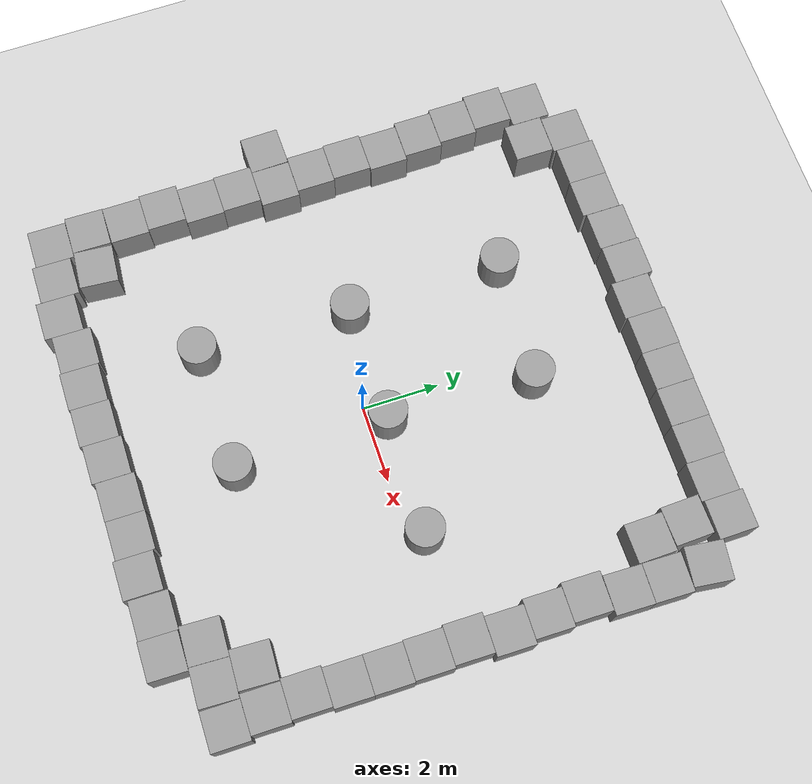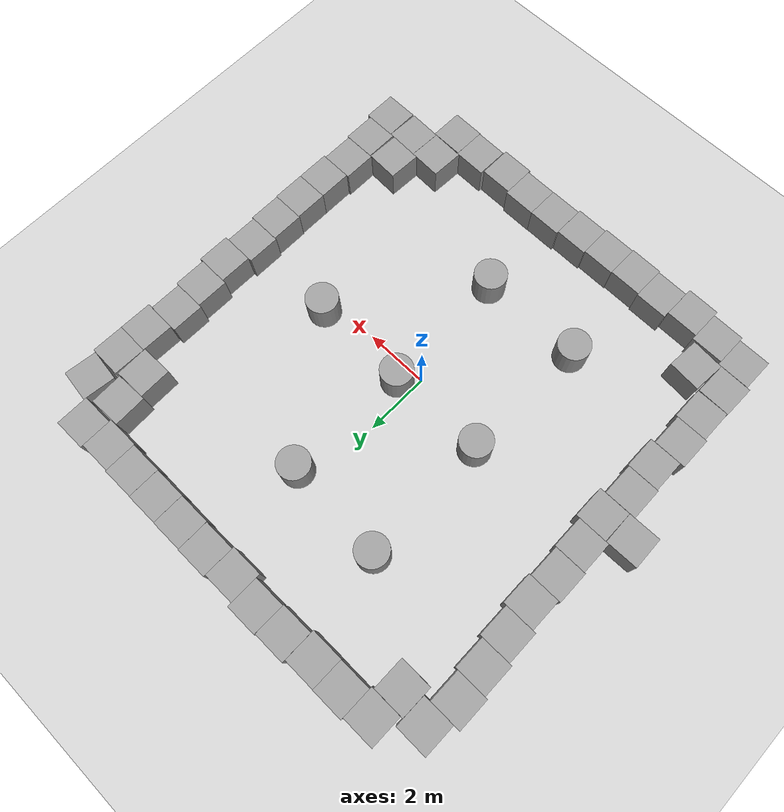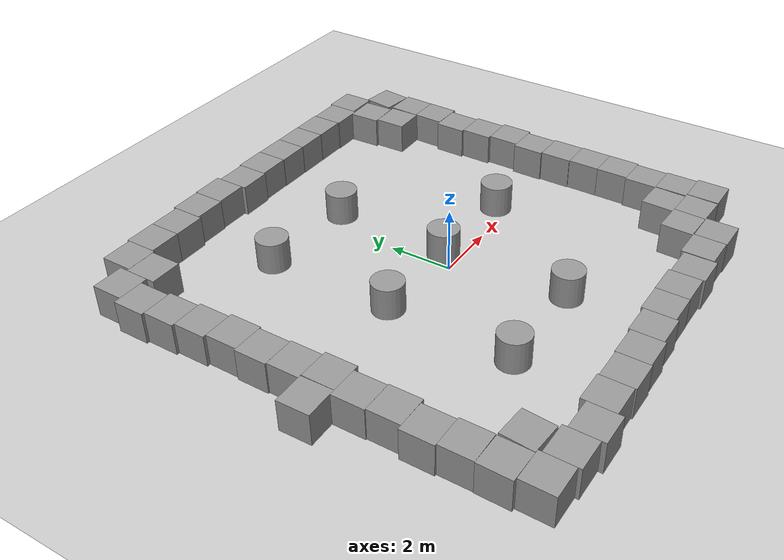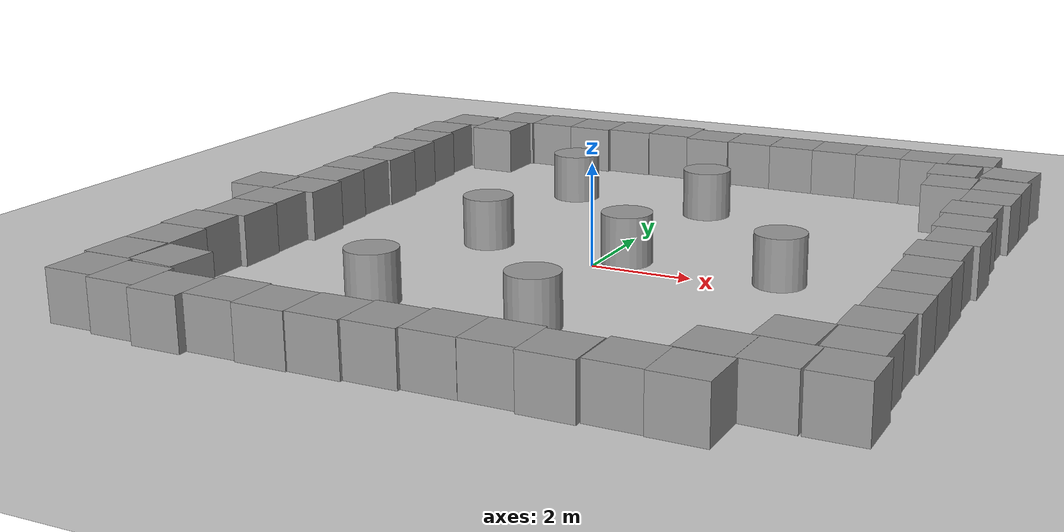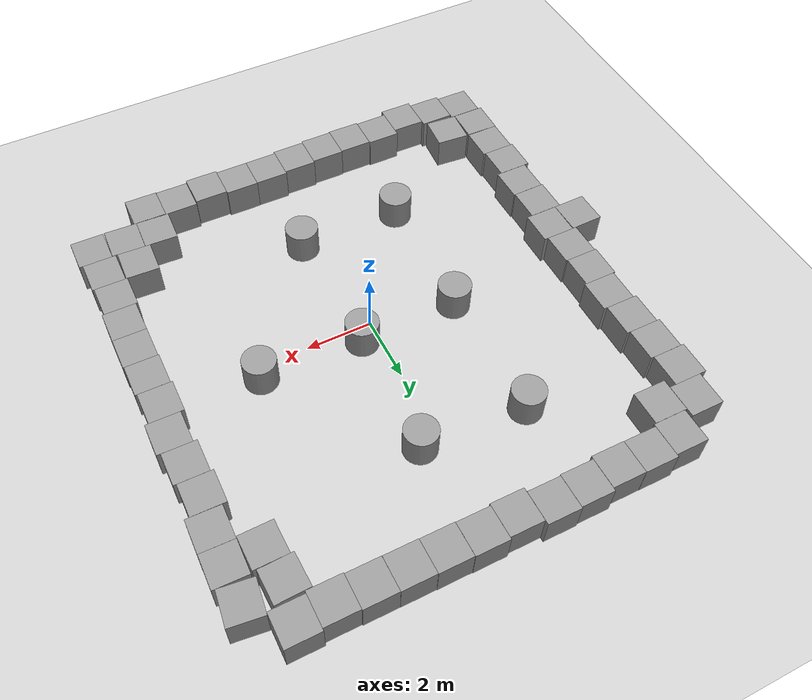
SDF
<sdf version="1.7">
 <world name="default">
  <light name="sun" type="directional">
   <pose>0 0 10 0 -0 0</pose>
   <diffuse>0.8 0.8 0.8 1</diffuse>
   <specular>0.2 0.2 0.2 1</specular>
   <attenuation>
    <range>1000</range>
    <constant>0.9</constant>
    <linear>0.01</linear>
    <quadratic>0.001</quadratic>
   </attenuation>
   <direction>-0.5 0.1 -0.9</direction>
   <spot><inner_angle>0</inner_angle><outer_angle>0</outer_angle><falloff>0</falloff></spot>
  </light>
  <model name="ground_plane">
   <static>1</static>
   <link name="link">
    <collision name="collision">
     <geometry><plane><normal>0 0 1</normal><size>100 100</size></plane></geometry>
     <surface>
      <contact><collide_bitmask>65535</collide_bitmask></contact>
      <friction><ode><mu>100</mu><mu2>50</mu2></ode></friction>
     </surface>
    </collision>
    <visual name="visual">
     <cast_shadows>0</cast_shadows>
     <geometry><plane><normal>0 0 1</normal><size>100 100</size></plane></geometry>
     <material>
      <script><uri>file://media/materials/scripts/gazebo.material</uri><name>Gazebo/Grey</name></script>
     </material>
    </visual>
   </link>
  </model>
  <gravity>0 0 -9.8</gravity>
  <magnetic_field>6e-06 2.3e-05 -4.2e-05</magnetic_field>
  <atmosphere type="adiabatic"/>
  <physics type="ode">
   <max_step_size>0.001</max_step_size>
   <real_time_factor>1</real_time_factor>
   <real_time_update_rate>1000</real_time_update_rate>
  </physics>
  <scene><ambient>0.4 0.4 0.4 1</ambient><background>0.7 0.7 0.7 1</background><shadows>1</shadows></scene>
  <spherical_coordinates>
   <surface_model>EARTH_WGS84</surface_model>
   <latitude_deg>0</latitude_deg>
   <longitude_deg>0</longitude_deg>
   <elevation>0</elevation>
   <heading_deg>0</heading_deg>
  </spherical_coordinates>
  <model name="unit_box">
   <pose>-5.49885 -5.40816 0.499995 1e-05 -0 -0.084874</pose>
   <link name="link">
    <inertial>
     <mass>1</mass>
     <inertia>
      <ixx>0.166667</ixx>
      <ixy>0</ixy>
      <ixz>0</ixz>
      <iyy>0.166667</iyy>
      <iyz>0</iyz>
      <izz>0.166667</izz>
     </inertia>
    </inertial>
    <collision name="collision"><geometry><box><size>1 1 1</size></box></geometry></collision>
    <visual name="visual">
     <geometry><box><size>1 1 1</size></box></geometry>
     <material>
      <script><name>Gazebo/Grey</name><uri>file://media/materials/scripts/gazebo.material</uri></script>
     </material>
    </visual>
   </link>
  </model>
  <model name="unit_box_clone">
   <pose>-4.44568 -6.63385 0.499995 0 1e-05 -0.011307</pose>
   <link name="link">
    <inertial>
     <mass>1</mass>
     <inertia>
      <ixx>0.166667</ixx>
      <ixy>0</ixy>
      <ixz>0</ixz>
      <iyy>0.166667</iyy>
      <iyz>0</iyz>
      <izz>0.166667</izz>
     </inertia>
    </inertial>
    <collision name="collision"><geometry><box><size>1 1 1</size></box></geometry></collision>
    <visual name="visual">
     <geometry><box><size>1 1 1</size></box></geometry>
     <material>
      <script><name>Gazebo/Grey</name><uri>file://media/materials/scripts/gazebo.material</uri></script>
     </material>
    </visual>
   </link>
  </model>
  <model name="unit_box_clone_0">
   <pose>-3.44363 -6.4717 0.499995 1e-05 -0 -0.010857</pose>
   <link name="link">
    <inertial>
     <mass>1</mass>
     <inertia>
      <ixx>0.166667</ixx>
      <ixy>0</ixy>
      <ixz>0</ixz>
      <iyy>0.166667</iyy>
      <iyz>0</iyz>
      <izz>0.166667</izz>
     </inertia>
    </inertial>
    <collision name="collision"><geometry><box><size>1 1 1</size></box></geometry></collision>
    <visual name="visual">
     <geometry><box><size>1 1 1</size></box></geometry>
     <material>
      <script><name>Gazebo/Grey</name><uri>file://media/materials/scripts/gazebo.material</uri></script>
     </material>
    </visual>
   </link>
  </model>
  <model name="unit_box_clone_1">
   <pose>-2.44409 -6.52458 0.499995 1e-05 -0 -0.010769</pose>
   <link name="link">
    <inertial>
     <mass>1</mass>
     <inertia>
      <ixx>0.166667</ixx>
      <ixy>0</ixy>
      <ixz>0</ixz>
      <iyy>0.166667</iyy>
      <iyz>0</iyz>
      <izz>0.166667</izz>
     </inertia>
    </inertial>
    <collision name="collision"><geometry><box><size>1 1 1</size></box></geometry></collision>
    <visual name="visual">
     <geometry><box><size>1 1 1</size></box></geometry>
     <material>
      <script><name>Gazebo/Grey</name><uri>file://media/materials/scripts/gazebo.material</uri></script>
     </material>
    </visual>
   </link>
  </model>
  <model name="unit_box_clone_2">
   <pose>-1.44379 -6.50556 0.499995 -0 -1e-05 -0.010718</pose>
   <link name="link">
    <inertial>
     <mass>1</mass>
     <inertia>
      <ixx>0.166667</ixx>
      <ixy>0</ixy>
      <ixz>0</ixz>
      <iyy>0.166667</iyy>
      <iyz>0</iyz>
      <izz>0.166667</izz>
     </inertia>
    </inertial>
    <collision name="collision"><geometry><box><size>1 1 1</size></box></geometry></collision>
    <visual name="visual">
     <geometry><box><size>1 1 1</size></box></geometry>
     <material>
      <script><name>Gazebo/Grey</name><uri>file://media/materials/scripts/gazebo.material</uri></script>
     </material>
    </visual>
   </link>
  </model>
  <model name="unit_box_clone_3">
   <pose>-0.443128 -6.45912 0.499995 -1e-05 -0 -0.010554</pose>
   <link name="link">
    <inertial>
     <mass>1</mass>
     <inertia>
      <ixx>0.166667</ixx>
      <ixy>0</ixy>
      <ixz>0</ixz>
      <iyy>0.166667</iyy>
      <iyz>0</iyz>
      <izz>0.166667</izz>
     </inertia>
    </inertial>
    <collision name="collision"><geometry><box><size>1 1 1</size></box></geometry></collision>
    <visual name="visual">
     <geometry><box><size>1 1 1</size></box></geometry>
     <material>
      <script><name>Gazebo/Grey</name><uri>file://media/materials/scripts/gazebo.material</uri></script>
     </material>
    </visual>
   </link>
  </model>
  <model name="unit_box_clone_4">
   <pose>0.557963 -6.39941 0.499995 -1e-05 -0 -0.009621</pose>
   <link name="link">
    <inertial>
     <mass>1</mass>
     <inertia>
      <ixx>0.166667</ixx>
      <ixy>0</ixy>
      <ixz>0</ixz>
      <iyy>0.166667</iyy>
      <iyz>0</iyz>
      <izz>0.166667</izz>
     </inertia>
    </inertial>
    <collision name="collision"><geometry><box><size>1 1 1</size></box></geometry></collision>
    <visual name="visual">
     <geometry><box><size>1 1 1</size></box></geometry>
     <material>
      <script><name>Gazebo/Grey</name><uri>file://media/materials/scripts/gazebo.material</uri></script>
     </material>
    </visual>
   </link>
  </model>
  <model name="unit_box_clone_5">
   <pose>1.55799 -6.40229 0.499995 1e-05 0 -0.009621</pose>
   <link name="link">
    <inertial>
     <mass>1</mass>
     <inertia>
      <ixx>0.166667</ixx>
      <ixy>0</ixy>
      <ixz>0</ixz>
      <iyy>0.166667</iyy>
      <iyz>0</iyz>
      <izz>0.166667</izz>
     </inertia>
    </inertial>
    <collision name="collision"><geometry><box><size>1 1 1</size></box></geometry></collision>
    <visual name="visual">
     <geometry><box><size>1 1 1</size></box></geometry>
     <material>
      <script><name>Gazebo/Grey</name><uri>file://media/materials/scripts/gazebo.material</uri></script>
     </material>
    </visual>
   </link>
  </model>
  <model name="unit_box_clone_6">
   <pose>5.44243 -4.45882 0.499995 1e-05 0 -0.047217</pose>
   <link name="link">
    <inertial>
     <mass>1</mass>
     <inertia>
      <ixx>0.166667</ixx>
      <ixy>0</ixy>
      <ixz>0</ixz>
      <iyy>0.166667</iyy>
      <iyz>0</iyz>
      <izz>0.166667</izz>
     </inertia>
    </inertial>
    <collision name="collision"><geometry><box><size>1 1 1</size></box></geometry></collision>
    <visual name="visual">
     <geometry><box><size>1 1 1</size></box></geometry>
     <material>
      <script><name>Gazebo/Grey</name><uri>file://media/materials/scripts/gazebo.material</uri></script>
     </material>
    </visual>
   </link>
  </model>
  <model name="unit_box_clone_7">
   <pose>6.43536 -3.48599 0.5 -1e-06 -0 -0.009317</pose>
   <link name="link">
    <inertial>
     <mass>1</mass>
     <inertia>
      <ixx>0.166667</ixx>
      <ixy>0</ixy>
      <ixz>0</ixz>
      <iyy>0.166667</iyy>
      <iyz>0</iyz>
      <izz>0.166667</izz>
     </inertia>
    </inertial>
    <collision name="collision"><geometry><box><size>1 1 1</size></box></geometry></collision>
    <visual name="visual">
     <geometry><box><size>1 1 1</size></box></geometry>
     <material>
      <script><name>Gazebo/Grey</name><uri>file://media/materials/scripts/gazebo.material</uri></script>
     </material>
    </visual>
   </link>
  </model>
  <model name="unit_box_clone_8">
   <pose>6.50513 -2.48659 0.5 0 -0 -0.009328</pose>
   <link name="link">
    <inertial>
     <mass>1</mass>
     <inertia>
      <ixx>0.166667</ixx>
      <ixy>0</ixy>
      <ixz>0</ixz>
      <iyy>0.166667</iyy>
      <iyz>0</iyz>
      <izz>0.166667</izz>
     </inertia>
    </inertial>
    <collision name="collision"><geometry><box><size>1 1 1</size></box></geometry></collision>
    <visual name="visual">
     <geometry><box><size>1 1 1</size></box></geometry>
     <material>
      <script><name>Gazebo/Grey</name><uri>file://media/materials/scripts/gazebo.material</uri></script>
     </material>
    </visual>
   </link>
  </model>
  <model name="unit_box_clone_9">
   <pose>6.57158 -5.48756 0.499995 0 1e-05 -0.009032</pose>
   <link name="link">
    <inertial>
     <mass>1</mass>
     <inertia>
      <ixx>0.166667</ixx>
      <ixy>0</ixy>
      <ixz>0</ixz>
      <iyy>0.166667</iyy>
      <iyz>0</iyz>
      <izz>0.166667</izz>
     </inertia>
    </inertial>
    <collision name="collision"><geometry><box><size>1 1 1</size></box></geometry></collision>
    <visual name="visual">
     <geometry><box><size>1 1 1</size></box></geometry>
     <material>
      <script><name>Gazebo/Grey</name><uri>file://media/materials/scripts/gazebo.material</uri></script>
     </material>
    </visual>
   </link>
  </model>
  <model name="unit_box_clone_10">
   <pose>6.47735 -4.48659 0.499995 0 1e-05 -0.00917</pose>
   <link name="link">
    <inertial>
     <mass>1</mass>
     <inertia>
      <ixx>0.166667</ixx>
      <ixy>0</ixy>
      <ixz>0</ixz>
      <iyy>0.166667</iyy>
      <iyz>0</iyz>
      <izz>0.166667</izz>
     </inertia>
    </inertial>
    <collision name="collision"><geometry><box><size>1 1 1</size></box></geometry></collision>
    <visual name="visual">
     <geometry><box><size>1 1 1</size></box></geometry>
     <material>
      <script><name>Gazebo/Grey</name><uri>file://media/materials/scripts/gazebo.material</uri></script>
     </material>
    </visual>
   </link>
  </model>
  <model name="unit_box_clone_11">
   <pose>5.54749 -5.46491 0.499995 1e-05 -0 -0.047201</pose>
   <link name="link">
    <inertial>
     <mass>1</mass>
     <inertia>
      <ixx>0.166667</ixx>
      <ixy>0</ixy>
      <ixz>0</ixz>
      <iyy>0.166667</iyy>
      <iyz>0</iyz>
      <izz>0.166667</izz>
     </inertia>
    </inertial>
    <collision name="collision"><geometry><box><size>1 1 1</size></box></geometry></collision>
    <visual name="visual">
     <geometry><box><size>1 1 1</size></box></geometry>
     <material>
      <script><name>Gazebo/Grey</name><uri>file://media/materials/scripts/gazebo.material</uri></script>
     </material>
    </visual>
   </link>
  </model>
  <model name="unit_box_clone_12">
   <pose>4.54623 -5.41848 0.499995 -1e-05 -0 -0.045584</pose>
   <link name="link">
    <inertial>
     <mass>1</mass>
     <inertia>
      <ixx>0.166667</ixx>
      <ixy>0</ixy>
      <ixz>0</ixz>
      <iyy>0.166667</iyy>
      <iyz>0</iyz>
      <izz>0.166667</izz>
     </inertia>
    </inertial>
    <collision name="collision"><geometry><box><size>1 1 1</size></box></geometry></collision>
    <visual name="visual">
     <geometry><box><size>1 1 1</size></box></geometry>
     <material>
      <script><name>Gazebo/Grey</name><uri>file://media/materials/scripts/gazebo.material</uri></script>
     </material>
    </visual>
   </link>
  </model>
  <model name="unit_box_clone_13">
   <pose>4.58052 -6.43426 0.499995 0 1e-05 -0.019018</pose>
   <link name="link">
    <inertial>
     <mass>1</mass>
     <inertia>
      <ixx>0.166667</ixx>
      <ixy>0</ixy>
      <ixz>0</ixz>
      <iyy>0.166667</iyy>
      <iyz>0</iyz>
      <izz>0.166667</izz>
     </inertia>
    </inertial>
    <collision name="collision"><geometry><box><size>1 1 1</size></box></geometry></collision>
    <visual name="visual">
     <geometry><box><size>1 1 1</size></box></geometry>
     <material>
      <script><name>Gazebo/Grey</name><uri>file://media/materials/scripts/gazebo.material</uri></script>
     </material>
    </visual>
   </link>
  </model>
  <model name="unit_box_clone_14">
   <pose>3.5809 -6.39336 0.499995 0 1e-05 -0.01867</pose>
   <link name="link">
    <inertial>
     <mass>1</mass>
     <inertia>
      <ixx>0.166667</ixx>
      <ixy>0</ixy>
      <ixz>0</ixz>
      <iyy>0.166667</iyy>
      <iyz>0</iyz>
      <izz>0.166667</izz>
     </inertia>
    </inertial>
    <collision name="collision"><geometry><box><size>1 1 1</size></box></geometry></collision>
    <visual name="visual">
     <geometry><box><size>1 1 1</size></box></geometry>
     <material>
      <script><name>Gazebo/Grey</name><uri>file://media/materials/scripts/gazebo.material</uri></script>
     </material>
    </visual>
   </link>
  </model>
  <model name="unit_box_clone_15">
   <pose>2.55742 -6.48057 0.499995 1e-05 0 -0.009659</pose>
   <link name="link">
    <inertial>
     <mass>1</mass>
     <inertia>
      <ixx>0.166667</ixx>
      <ixy>0</ixy>
      <ixz>0</ixz>
      <iyy>0.166667</iyy>
      <iyz>0</iyz>
      <izz>0.166667</izz>
     </inertia>
    </inertial>
    <collision name="collision"><geometry><box><size>1 1 1</size></box></geometry></collision>
    <visual name="visual">
     <geometry><box><size>1 1 1</size></box></geometry>
     <material>
      <script><name>Gazebo/Grey</name><uri>file://media/materials/scripts/gazebo.material</uri></script>
     </material>
    </visual>
   </link>
  </model>
  <model name="unit_box_clone_16">
   <pose>6.51183 -1.4866 0.5 0 0 -0.00933</pose>
   <link name="link">
    <inertial>
     <mass>1</mass>
     <inertia>
      <ixx>0.166667</ixx>
      <ixy>0</ixy>
      <ixz>0</ixz>
      <iyy>0.166667</iyy>
      <iyz>0</iyz>
      <izz>0.166667</izz>
     </inertia>
    </inertial>
    <collision name="collision"><geometry><box><size>1 1 1</size></box></geometry></collision>
    <visual name="visual">
     <geometry><box><size>1 1 1</size></box></geometry>
     <material>
      <script><name>Gazebo/Grey</name><uri>file://media/materials/scripts/gazebo.material</uri></script>
     </material>
    </visual>
   </link>
  </model>
  <model name="unit_box_clone_17">
   <pose>6.49643 -0.486333 0.499995 -1e-05 -0 -0.009459</pose>
   <link name="link">
    <inertial>
     <mass>1</mass>
     <inertia>
      <ixx>0.166667</ixx>
      <ixy>0</ixy>
      <ixz>0</ixz>
      <iyy>0.166667</iyy>
      <iyz>0</iyz>
      <izz>0.166667</izz>
     </inertia>
    </inertial>
    <collision name="collision"><geometry><box><size>1 1 1</size></box></geometry></collision>
    <visual name="visual">
     <geometry><box><size>1 1 1</size></box></geometry>
     <material>
      <script><name>Gazebo/Grey</name><uri>file://media/materials/scripts/gazebo.material</uri></script>
     </material>
    </visual>
   </link>
  </model>
  <model name="unit_box_clone_18">
   <pose>6.45203 0.514934 0.5 0 0 -0.011074</pose>
   <link name="link">
    <inertial>
     <mass>1</mass>
     <inertia>
      <ixx>0.166667</ixx>
      <ixy>0</ixy>
      <ixz>0</ixz>
      <iyy>0.166667</iyy>
      <iyz>0</iyz>
      <izz>0.166667</izz>
     </inertia>
    </inertial>
    <collision name="collision"><geometry><box><size>1 1 1</size></box></geometry></collision>
    <visual name="visual">
     <geometry><box><size>1 1 1</size></box></geometry>
     <material>
      <script><name>Gazebo/Grey</name><uri>file://media/materials/scripts/gazebo.material</uri></script>
     </material>
    </visual>
   </link>
  </model>
  <model name="unit_box_clone_19">
   <pose>6.57461 1.514 0.5 0 0 -0.011996</pose>
   <link name="link">
    <inertial>
     <mass>1</mass>
     <inertia>
      <ixx>0.166667</ixx>
      <ixy>0</ixy>
      <ixz>0</ixz>
      <iyy>0.166667</iyy>
      <iyz>0</iyz>
      <izz>0.166667</izz>
     </inertia>
    </inertial>
    <collision name="collision"><geometry><box><size>1 1 1</size></box></geometry></collision>
    <visual name="visual">
     <geometry><box><size>1 1 1</size></box></geometry>
     <material>
      <script><name>Gazebo/Grey</name><uri>file://media/materials/scripts/gazebo.material</uri></script>
     </material>
    </visual>
   </link>
  </model>
  <model name="unit_box_clone_20">
   <pose>6.47523 2.51561 0.499995 -0 1e-05 -0.012674</pose>
   <link name="link">
    <inertial>
     <mass>1</mass>
     <inertia>
      <ixx>0.166667</ixx>
      <ixy>0</ixy>
      <ixz>0</ixz>
      <iyy>0.166667</iyy>
      <iyz>0</iyz>
      <izz>0.166667</izz>
     </inertia>
    </inertial>
    <collision name="collision"><geometry><box><size>1 1 1</size></box></geometry></collision>
    <visual name="visual">
     <geometry><box><size>1 1 1</size></box></geometry>
     <material>
      <script><name>Gazebo/Grey</name><uri>file://media/materials/scripts/gazebo.material</uri></script>
     </material>
    </visual>
   </link>
  </model>
  <model name="unit_box_clone_21">
   <pose>6.40077 3.51723 0.5 -0 -0 -0.013882</pose>
   <link name="link">
    <inertial>
     <mass>1</mass>
     <inertia>
      <ixx>0.166667</ixx>
      <ixy>0</ixy>
      <ixz>0</ixz>
      <iyy>0.166667</iyy>
      <iyz>0</iyz>
      <izz>0.166667</izz>
     </inertia>
    </inertial>
    <collision name="collision"><geometry><box><size>1 1 1</size></box></geometry></collision>
    <visual name="visual">
     <geometry><box><size>1 1 1</size></box></geometry>
     <material>
      <script><name>Gazebo/Grey</name><uri>file://media/materials/scripts/gazebo.material</uri></script>
     </material>
    </visual>
   </link>
  </model>
  <model name="unit_box_clone_22">
   <pose>6.5589 4.51938 0.5 0 -0 -0.025703</pose>
   <link name="link">
    <inertial>
     <mass>1</mass>
     <inertia>
      <ixx>0.166667</ixx>
      <ixy>0</ixy>
      <ixz>0</ixz>
      <iyy>0.166667</iyy>
      <iyz>0</iyz>
      <izz>0.166667</izz>
     </inertia>
    </inertial>
    <collision name="collision"><geometry><box><size>1 1 1</size></box></geometry></collision>
    <visual name="visual">
     <geometry><box><size>1 1 1</size></box></geometry>
     <material>
      <script><name>Gazebo/Grey</name><uri>file://media/materials/scripts/gazebo.material</uri></script>
     </material>
    </visual>
   </link>
  </model>
  <model name="unit_box_clone_23">
   <pose>6.57937 5.51963 0.499995 0 -1e-05 -0.026579</pose>
   <link name="link">
    <inertial>
     <mass>1</mass>
     <inertia>
      <ixx>0.166667</ixx>
      <ixy>0</ixy>
      <ixz>0</ixz>
      <iyy>0.166667</iyy>
      <iyz>0</iyz>
      <izz>0.166667</izz>
     </inertia>
    </inertial>
    <collision name="collision"><geometry><box><size>1 1 1</size></box></geometry></collision>
    <visual name="visual">
     <geometry><box><size>1 1 1</size></box></geometry>
     <material>
      <script><name>Gazebo/Grey</name><uri>file://media/materials/scripts/gazebo.material</uri></script>
     </material>
    </visual>
   </link>
  </model>
  <model name="unit_box_clone_24">
   <pose>5.43315 6.4756 0.499995 0 1e-05 0.031704</pose>
   <link name="link">
    <inertial>
     <mass>1</mass>
     <inertia>
      <ixx>0.166667</ixx>
      <ixy>0</ixy>
      <ixz>0</ixz>
      <iyy>0.166667</iyy>
      <iyz>0</iyz>
      <izz>0.166667</izz>
     </inertia>
    </inertial>
    <collision name="collision"><geometry><box><size>1 1 1</size></box></geometry></collision>
    <visual name="visual">
     <geometry><box><size>1 1 1</size></box></geometry>
     <material>
      <script><name>Gazebo/Grey</name><uri>file://media/materials/scripts/gazebo.material</uri></script>
     </material>
    </visual>
   </link>
  </model>
  <model name="unit_box_clone_25">
   <pose>6.56612 6.56693 0.5 -0 -0 -0.124594</pose>
   <link name="link">
    <inertial>
     <mass>1</mass>
     <inertia>
      <ixx>0.166667</ixx>
      <ixy>0</ixy>
      <ixz>0</ixz>
      <iyy>0.166667</iyy>
      <iyz>0</iyz>
      <izz>0.166667</izz>
     </inertia>
    </inertial>
    <collision name="collision"><geometry><box><size>1 1 1</size></box></geometry></collision>
    <visual name="visual">
     <geometry><box><size>1 1 1</size></box></geometry>
     <material>
      <script><name>Gazebo/Grey</name><uri>file://media/materials/scripts/gazebo.material</uri></script>
     </material>
    </visual>
   </link>
  </model>
  <model name="unit_box_clone_26">
   <pose>5.55368 5.47043 0.499995 -1e-05 -0 0.014636</pose>
   <link name="link">
    <inertial>
     <mass>1</mass>
     <inertia>
      <ixx>0.166667</ixx>
      <ixy>0</ixy>
      <ixz>0</ixz>
      <iyy>0.166667</iyy>
      <iyz>0</iyz>
      <izz>0.166667</izz>
     </inertia>
    </inertial>
    <collision name="collision"><geometry><box><size>1 1 1</size></box></geometry></collision>
    <visual name="visual">
     <geometry><box><size>1 1 1</size></box></geometry>
     <material>
      <script><name>Gazebo/Grey</name><uri>file://media/materials/scripts/gazebo.material</uri></script>
     </material>
    </visual>
   </link>
  </model>
  <model name="unit_box_clone_27">
   <pose>5.62071 7.54381 0.499995 -0 -1e-05 0.002756</pose>
   <link name="link">
    <inertial>
     <mass>1</mass>
     <inertia>
      <ixx>0.166667</ixx>
      <ixy>0</ixy>
      <ixz>0</ixz>
      <iyy>0.166667</iyy>
      <iyz>0</iyz>
      <izz>0.166667</izz>
     </inertia>
    </inertial>
    <collision name="collision"><geometry><box><size>1 1 1</size></box></geometry></collision>
    <visual name="visual">
     <geometry><box><size>1 1 1</size></box></geometry>
     <material>
      <script><name>Gazebo/Grey</name><uri>file://media/materials/scripts/gazebo.material</uri></script>
     </material>
    </visual>
   </link>
  </model>
  <model name="unit_box_clone_28">
   <pose>4.62089 7.47324 0.499995 0 1e-05 0.002734</pose>
   <link name="link">
    <inertial>
     <mass>1</mass>
     <inertia>
      <ixx>0.166667</ixx>
      <ixy>0</ixy>
      <ixz>0</ixz>
      <iyy>0.166667</iyy>
      <iyz>0</iyz>
      <izz>0.166667</izz>
     </inertia>
    </inertial>
    <collision name="collision"><geometry><box><size>1 1 1</size></box></geometry></collision>
    <visual name="visual">
     <geometry><box><size>1 1 1</size></box></geometry>
     <material>
      <script><name>Gazebo/Grey</name><uri>file://media/materials/scripts/gazebo.material</uri></script>
     </material>
    </visual>
   </link>
  </model>
  <model name="unit_box_clone_29">
   <pose>3.62078 7.49826 0.499995 0 1e-05 0.002699</pose>
   <link name="link">
    <inertial>
     <mass>1</mass>
     <inertia>
      <ixx>0.166667</ixx>
      <ixy>0</ixy>
      <ixz>0</ixz>
      <iyy>0.166667</iyy>
      <iyz>0</iyz>
      <izz>0.166667</izz>
     </inertia>
    </inertial>
    <collision name="collision"><geometry><box><size>1 1 1</size></box></geometry></collision>
    <visual name="visual">
     <geometry><box><size>1 1 1</size></box></geometry>
     <material>
      <script><name>Gazebo/Grey</name><uri>file://media/materials/scripts/gazebo.material</uri></script>
     </material>
    </visual>
   </link>
  </model>
  <model name="unit_box_clone_30">
   <pose>2.62014 7.50285 0.499995 1e-05 -0 0.002428</pose>
   <link name="link">
    <inertial>
     <mass>1</mass>
     <inertia>
      <ixx>0.166667</ixx>
      <ixy>0</ixy>
      <ixz>0</ixz>
      <iyy>0.166667</iyy>
      <iyz>0</iyz>
      <izz>0.166667</izz>
     </inertia>
    </inertial>
    <collision name="collision"><geometry><box><size>1 1 1</size></box></geometry></collision>
    <visual name="visual">
     <geometry><box><size>1 1 1</size></box></geometry>
     <material>
      <script><name>Gazebo/Grey</name><uri>file://media/materials/scripts/gazebo.material</uri></script>
     </material>
    </visual>
   </link>
  </model>
  <model name="unit_box_clone_31">
   <pose>1.6196 7.51016 0.499995 -0 -1e-05 0.002077</pose>
   <link name="link">
    <inertial>
     <mass>1</mass>
     <inertia>
      <ixx>0.166667</ixx>
      <ixy>0</ixy>
      <ixz>0</ixz>
      <iyy>0.166667</iyy>
      <iyz>0</iyz>
      <izz>0.166667</izz>
     </inertia>
    </inertial>
    <collision name="collision"><geometry><box><size>1 1 1</size></box></geometry></collision>
    <visual name="visual">
     <geometry><box><size>1 1 1</size></box></geometry>
     <material>
      <script><name>Gazebo/Grey</name><uri>file://media/materials/scripts/gazebo.material</uri></script>
     </material>
    </visual>
   </link>
  </model>
  <model name="unit_box_clone_32">
   <pose>0.618877 7.52255 0.499995 -0 -1e-05 0.000922</pose>
   <link name="link">
    <inertial>
     <mass>1</mass>
     <inertia>
      <ixx>0.166667</ixx>
      <ixy>0</ixy>
      <ixz>0</ixz>
      <iyy>0.166667</iyy>
      <iyz>0</iyz>
      <izz>0.166667</izz>
     </inertia>
    </inertial>
    <collision name="collision"><geometry><box><size>1 1 1</size></box></geometry></collision>
    <visual name="visual">
     <geometry><box><size>1 1 1</size></box></geometry>
     <material>
      <script><name>Gazebo/Grey</name><uri>file://media/materials/scripts/gazebo.material</uri></script>
     </material>
    </visual>
   </link>
  </model>
  <model name="unit_box_clone_33">
   <pose>-0.381322 7.46697 0.5 0 -0 0.000866</pose>
   <link name="link">
    <inertial>
     <mass>1</mass>
     <inertia>
      <ixx>0.166667</ixx>
      <ixy>0</ixy>
      <ixz>0</ixz>
      <iyy>0.166667</iyy>
      <iyz>0</iyz>
      <izz>0.166667</izz>
     </inertia>
    </inertial>
    <collision name="collision"><geometry><box><size>1 1 1</size></box></geometry></collision>
    <visual name="visual">
     <geometry><box><size>1 1 1</size></box></geometry>
     <material>
      <script><name>Gazebo/Grey</name><uri>file://media/materials/scripts/gazebo.material</uri></script>
     </material>
    </visual>
   </link>
  </model>
  <model name="unit_box_clone_34">
   <pose>-1.38228 7.59298 0.499995 0 1e-05 -0.000937</pose>
   <link name="link">
    <inertial>
     <mass>1</mass>
     <inertia>
      <ixx>0.166667</ixx>
      <ixy>0</ixy>
      <ixz>0</ixz>
      <iyy>0.166667</iyy>
      <iyz>0</iyz>
      <izz>0.166667</izz>
     </inertia>
    </inertial>
    <collision name="collision"><geometry><box><size>1 1 1</size></box></geometry></collision>
    <visual name="visual">
     <geometry><box><size>1 1 1</size></box></geometry>
     <material>
      <script><name>Gazebo/Grey</name><uri>file://media/materials/scripts/gazebo.material</uri></script>
     </material>
    </visual>
   </link>
  </model>
  <model name="unit_box_clone_35">
   <pose>-2.38292 7.56239 0.499995 0 -1e-05 -0.001098</pose>
   <link name="link">
    <inertial>
     <mass>1</mass>
     <inertia>
      <ixx>0.166667</ixx>
      <ixy>0</ixy>
      <ixz>0</ixz>
      <iyy>0.166667</iyy>
      <iyz>0</iyz>
      <izz>0.166667</izz>
     </inertia>
    </inertial>
    <collision name="collision"><geometry><box><size>1 1 1</size></box></geometry></collision>
    <visual name="visual">
     <geometry><box><size>1 1 1</size></box></geometry>
     <material>
      <script><name>Gazebo/Grey</name><uri>file://media/materials/scripts/gazebo.material</uri></script>
     </material>
    </visual>
   </link>
  </model>
  <model name="unit_box_clone_36">
   <pose>-3.38485 7.47336 0.5 -0 -0 -0.000461</pose>
   <link name="link">
    <inertial>
     <mass>1</mass>
     <inertia>
      <ixx>0.166667</ixx>
      <ixy>0</ixy>
      <ixz>0</ixz>
      <iyy>0.166667</iyy>
      <iyz>0</iyz>
      <izz>0.166667</izz>
     </inertia>
    </inertial>
    <collision name="collision"><geometry><box><size>1 1 1</size></box></geometry></collision>
    <visual name="visual">
     <geometry><box><size>1 1 1</size></box></geometry>
     <material>
      <script><name>Gazebo/Grey</name><uri>file://media/materials/scripts/gazebo.material</uri></script>
     </material>
    </visual>
   </link>
  </model>
  <model name="unit_box_clone_37">
   <pose>-4.38489 7.47979 0.499995 -1e-05 -0 -0.000532</pose>
   <link name="link">
    <inertial>
     <mass>1</mass>
     <inertia>
      <ixx>0.166667</ixx>
      <ixy>0</ixy>
      <ixz>0</ixz>
      <iyy>0.166667</iyy>
      <iyz>0</iyz>
      <izz>0.166667</izz>
     </inertia>
    </inertial>
    <collision name="collision"><geometry><box><size>1 1 1</size></box></geometry></collision>
    <visual name="visual">
     <geometry><box><size>1 1 1</size></box></geometry>
     <material>
      <script><name>Gazebo/Grey</name><uri>file://media/materials/scripts/gazebo.material</uri></script>
     </material>
    </visual>
   </link>
  </model>
  <model name="unit_box_clone_38">
   <pose>-5.45509 6.40723 0.499995 1e-05 0 -0.002917</pose>
   <link name="link">
    <inertial>
     <mass>1</mass>
     <inertia>
      <ixx>0.166667</ixx>
      <ixy>0</ixy>
      <ixz>0</ixz>
      <iyy>0.166667</iyy>
      <iyz>0</iyz>
      <izz>0.166667</izz>
     </inertia>
    </inertial>
    <collision name="collision"><geometry><box><size>1 1 1</size></box></geometry></collision>
    <visual name="visual">
     <geometry><box><size>1 1 1</size></box></geometry>
     <material>
      <script><name>Gazebo/Grey</name><uri>file://media/materials/scripts/gazebo.material</uri></script>
     </material>
    </visual>
   </link>
  </model>
  <model name="unit_box_clone_39">
   <pose>-6.65721 5.65415 0.5 -0 -0 -0.002919</pose>
   <link name="link">
    <inertial>
     <mass>1</mass>
     <inertia>
      <ixx>0.166667</ixx>
      <ixy>0</ixy>
      <ixz>0</ixz>
      <iyy>0.166667</iyy>
      <iyz>0</iyz>
      <izz>0.166667</izz>
     </inertia>
    </inertial>
    <collision name="collision"><geometry><box><size>1 1 1</size></box></geometry></collision>
    <visual name="visual">
     <geometry><box><size>1 1 1</size></box></geometry>
     <material>
      <script><name>Gazebo/Grey</name><uri>file://media/materials/scripts/gazebo.material</uri></script>
     </material>
    </visual>
   </link>
  </model>
  <model name="unit_box_clone_40">
   <pose>-6.57394 4.65342 0.499995 0 -1e-05 -0.001754</pose>
   <link name="link">
    <inertial>
     <mass>1</mass>
     <inertia>
      <ixx>0.166667</ixx>
      <ixy>0</ixy>
      <ixz>0</ixz>
      <iyy>0.166667</iyy>
      <iyz>0</iyz>
      <izz>0.166667</izz>
     </inertia>
    </inertial>
    <collision name="collision"><geometry><box><size>1 1 1</size></box></geometry></collision>
    <visual name="visual">
     <geometry><box><size>1 1 1</size></box></geometry>
     <material>
      <script><name>Gazebo/Grey</name><uri>file://media/materials/scripts/gazebo.material</uri></script>
     </material>
    </visual>
   </link>
  </model>
  <model name="unit_box_clone_41">
   <pose>-6.49076 3.6531 0.5 1e-06 -0 -0.001351</pose>
   <link name="link">
    <inertial>
     <mass>1</mass>
     <inertia>
      <ixx>0.166667</ixx>
      <ixy>0</ixy>
      <ixz>0</ixz>
      <iyy>0.166667</iyy>
      <iyz>0</iyz>
      <izz>0.166667</izz>
     </inertia>
    </inertial>
    <collision name="collision"><geometry><box><size>1 1 1</size></box></geometry></collision>
    <visual name="visual">
     <geometry><box><size>1 1 1</size></box></geometry>
     <material>
      <script><name>Gazebo/Grey</name><uri>file://media/materials/scripts/gazebo.material</uri></script>
     </material>
    </visual>
   </link>
  </model>
  <model name="unit_box_clone_42">
   <pose>-6.39314 2.65284 0.5 0 0 -0.001025</pose>
   <link name="link">
    <inertial>
     <mass>1</mass>
     <inertia>
      <ixx>0.166667</ixx>
      <ixy>0</ixy>
      <ixz>0</ixz>
      <iyy>0.166667</iyy>
      <iyz>0</iyz>
      <izz>0.166667</izz>
     </inertia>
    </inertial>
    <collision name="collision"><geometry><box><size>1 1 1</size></box></geometry></collision>
    <visual name="visual">
     <geometry><box><size>1 1 1</size></box></geometry>
     <material>
      <script><name>Gazebo/Grey</name><uri>file://media/materials/scripts/gazebo.material</uri></script>
     </material>
    </visual>
   </link>
  </model>
  <model name="unit_box_clone_43">
   <pose>-6.45095 1.65281 0.5 0 0 -0.000863</pose>
   <link name="link">
    <inertial>
     <mass>1</mass>
     <inertia>
      <ixx>0.166667</ixx>
      <ixy>0</ixy>
      <ixz>0</ixz>
      <iyy>0.166667</iyy>
      <iyz>0</iyz>
      <izz>0.166667</izz>
     </inertia>
    </inertial>
    <collision name="collision"><geometry><box><size>1 1 1</size></box></geometry></collision>
    <visual name="visual">
     <geometry><box><size>1 1 1</size></box></geometry>
     <material>
      <script><name>Gazebo/Grey</name><uri>file://media/materials/scripts/gazebo.material</uri></script>
     </material>
    </visual>
   </link>
  </model>
  <model name="unit_box_clone_44">
   <pose>-6.40749 0.652261 0.5 0 -0 0.000257</pose>
   <link name="link">
    <inertial>
     <mass>1</mass>
     <inertia>
      <ixx>0.166667</ixx>
      <ixy>0</ixy>
      <ixz>0</ixz>
      <iyy>0.166667</iyy>
      <iyz>0</iyz>
      <izz>0.166667</izz>
     </inertia>
    </inertial>
    <collision name="collision"><geometry><box><size>1 1 1</size></box></geometry></collision>
    <visual name="visual">
     <geometry><box><size>1 1 1</size></box></geometry>
     <material>
      <script><name>Gazebo/Grey</name><uri>file://media/materials/scripts/gazebo.material</uri></script>
     </material>
    </visual>
   </link>
  </model>
  <model name="unit_box_clone_45">
   <pose>-6.29436 -0.347947 0.5 0 -0 0.000871</pose>
   <link name="link">
    <inertial>
     <mass>1</mass>
     <inertia>
      <ixx>0.166667</ixx>
      <ixy>0</ixy>
      <ixz>0</ixz>
      <iyy>0.166667</iyy>
      <iyz>0</iyz>
      <izz>0.166667</izz>
     </inertia>
    </inertial>
    <collision name="collision"><geometry><box><size>1 1 1</size></box></geometry></collision>
    <visual name="visual">
     <geometry><box><size>1 1 1</size></box></geometry>
     <material>
      <script><name>Gazebo/Grey</name><uri>file://media/materials/scripts/gazebo.material</uri></script>
     </material>
    </visual>
   </link>
  </model>
  <model name="unit_box_clone_46">
   <pose>-6.46454 -1.35078 0.499995 1e-05 -0 0.003553</pose>
   <link name="link">
    <inertial>
     <mass>1</mass>
     <inertia>
      <ixx>0.166667</ixx>
      <ixy>0</ixy>
      <ixz>0</ixz>
      <iyy>0.166667</iyy>
      <iyz>0</iyz>
      <izz>0.166667</izz>
     </inertia>
    </inertial>
    <collision name="collision"><geometry><box><size>1 1 1</size></box></geometry></collision>
    <visual name="visual">
     <geometry><box><size>1 1 1</size></box></geometry>
     <material>
      <script><name>Gazebo/Grey</name><uri>file://media/materials/scripts/gazebo.material</uri></script>
     </material>
    </visual>
   </link>
  </model>
  <model name="unit_box_clone_47">
   <pose>-6.42732 -2.35129 0.499995 1e-05 -0 0.002299</pose>
   <link name="link">
    <inertial>
     <mass>1</mass>
     <inertia>
      <ixx>0.166667</ixx>
      <ixy>0</ixy>
      <ixz>0</ixz>
      <iyy>0.166667</iyy>
      <iyz>0</iyz>
      <izz>0.166667</izz>
     </inertia>
    </inertial>
    <collision name="collision"><geometry><box><size>1 1 1</size></box></geometry></collision>
    <visual name="visual">
     <geometry><box><size>1 1 1</size></box></geometry>
     <material>
      <script><name>Gazebo/Grey</name><uri>file://media/materials/scripts/gazebo.material</uri></script>
     </material>
    </visual>
   </link>
  </model>
  <model name="unit_box_clone_48">
   <pose>-6.56096 -3.35309 0.499995 -9e-06 -0 -0.001805</pose>
   <link name="link">
    <inertial>
     <mass>1</mass>
     <inertia>
      <ixx>0.166667</ixx>
      <ixy>0</ixy>
      <ixz>0</ixz>
      <iyy>0.166667</iyy>
      <iyz>0</iyz>
      <izz>0.166667</izz>
     </inertia>
    </inertial>
    <collision name="collision"><geometry><box><size>1 1 1</size></box></geometry></collision>
    <visual name="visual">
     <geometry><box><size>1 1 1</size></box></geometry>
     <material>
      <script><name>Gazebo/Grey</name><uri>file://media/materials/scripts/gazebo.material</uri></script>
     </material>
    </visual>
   </link>
  </model>
  <model name="unit_box_clone_49">
   <pose>-6.50412 -4.35322 0.499995 9e-06 -0 -0.00183</pose>
   <link name="link">
    <inertial>
     <mass>1</mass>
     <inertia>
      <ixx>0.166667</ixx>
      <ixy>0</ixy>
      <ixz>0</ixz>
      <iyy>0.166667</iyy>
      <iyz>0</iyz>
      <izz>0.166667</izz>
     </inertia>
    </inertial>
    <collision name="collision"><geometry><box><size>1 1 1</size></box></geometry></collision>
    <visual name="visual">
     <geometry><box><size>1 1 1</size></box></geometry>
     <material>
      <script><name>Gazebo/Grey</name><uri>file://media/materials/scripts/gazebo.material</uri></script>
     </material>
    </visual>
   </link>
  </model>
  <model name="unit_box_clone_50">
   <pose>-6.52925 -5.36226 0.499995 -1e-05 -0 -0.020712</pose>
   <link name="link">
    <inertial>
     <mass>1</mass>
     <inertia>
      <ixx>0.166667</ixx>
      <ixy>0</ixy>
      <ixz>0</ixz>
      <iyy>0.166667</iyy>
      <iyz>0</iyz>
      <izz>0.166667</izz>
     </inertia>
    </inertial>
    <collision name="collision"><geometry><box><size>1 1 1</size></box></geometry></collision>
    <visual name="visual">
     <geometry><box><size>1 1 1</size></box></geometry>
     <material>
      <script><name>Gazebo/Grey</name><uri>file://media/materials/scripts/gazebo.material</uri></script>
     </material>
    </visual>
   </link>
  </model>
  <model name="unit_box_clone_51">
   <pose>-5.44419 -6.48359 0.499995 0 -1e-05 -0.01167</pose>
   <link name="link">
    <inertial>
     <mass>1</mass>
     <inertia>
      <ixx>0.166667</ixx>
      <ixy>0</ixy>
      <ixz>0</ixz>
      <iyy>0.166667</iyy>
      <iyz>0</iyz>
      <izz>0.166667</izz>
     </inertia>
    </inertial>
    <collision name="collision"><geometry><box><size>1 1 1</size></box></geometry></collision>
    <visual name="visual">
     <geometry><box><size>1 1 1</size></box></geometry>
     <material>
      <script><name>Gazebo/Grey</name><uri>file://media/materials/scripts/gazebo.material</uri></script>
     </material>
    </visual>
   </link>
  </model>
  <model name="unit_box_clone_52">
   <pose>-5.38518 7.40895 0.499995 0 -1e-05 -0.000956</pose>
   <link name="link">
    <inertial>
     <mass>1</mass>
     <inertia>
      <ixx>0.166667</ixx>
      <ixy>0</ixy>
      <ixz>0</ixz>
      <iyy>0.166667</iyy>
      <iyz>0</iyz>
      <izz>0.166667</izz>
     </inertia>
    </inertial>
    <collision name="collision"><geometry><box><size>1 1 1</size></box></geometry></collision>
    <visual name="visual">
     <geometry><box><size>1 1 1</size></box></geometry>
     <material>
      <script><name>Gazebo/Grey</name><uri>file://media/materials/scripts/gazebo.material</uri></script>
     </material>
    </visual>
   </link>
  </model>
  <model name="unit_box_clone_53">
   <pose>-6.45657 6.65367 0.499995 -1e-05 -0 -0.003238</pose>
   <link name="link">
    <inertial>
     <mass>1</mass>
     <inertia>
      <ixx>0.166667</ixx>
      <ixy>0</ixy>
      <ixz>0</ixz>
      <iyy>0.166667</iyy>
      <iyz>0</iyz>
      <izz>0.166667</izz>
     </inertia>
    </inertial>
    <collision name="collision"><geometry><box><size>1 1 1</size></box></geometry></collision>
    <visual name="visual">
     <geometry><box><size>1 1 1</size></box></geometry>
     <material>
      <script><name>Gazebo/Grey</name><uri>file://media/materials/scripts/gazebo.material</uri></script>
     </material>
    </visual>
   </link>
  </model>
  <model name="unit_box_clone_54">
   <pose>-7.3026 -0.358331 0.5 0 -0 0.017523</pose>
   <link name="link">
    <inertial>
     <mass>1</mass>
     <inertia>
      <ixx>0.166667</ixx>
      <ixy>0</ixy>
      <ixz>0</ixz>
      <iyy>0.166667</iyy>
      <iyz>0</iyz>
      <izz>0.166667</izz>
     </inertia>
    </inertial>
    <collision name="collision"><geometry><box><size>1 1 1</size></box></geometry></collision>
    <visual name="visual">
     <geometry><box><size>1 1 1</size></box></geometry>
     <material>
      <script><name>Gazebo/Grey</name><uri>file://media/materials/scripts/gazebo.material</uri></script>
     </material>
    </visual>
   </link>
  </model>
  <model name="unit_cylinder">
   <pose>-2.62412 -3.5412 0.499992 -3e-06 -4e-06 -0</pose>
   <link name="link">
    <inertial>
     <mass>1</mass>
     <inertia><ixx>0.145833</ixx><ixy>0</ixy><ixz>0</ixz><iyy>0.145833</iyy><iyz>0</iyz><izz>0.125</izz></inertia>
    </inertial>
    <collision name="collision">
     <geometry><cylinder><radius>0.5</radius><length>1</length></cylinder></geometry>
    </collision>
    <visual name="visual">
     <geometry><cylinder><radius>0.5</radius><length>1</length></cylinder></geometry>
     <material>
      <script><name>Gazebo/Grey</name><uri>file://media/materials/scripts/gazebo.material</uri></script>
     </material>
    </visual>
   </link>
  </model>
  <model name="unit_box_clone_55">
   <pose>-6.44292 -6.36784 0.499995 0 1e-05 -0.011696</pose>
   <link name="link">
    <inertial>
     <mass>1</mass>
     <inertia>
      <ixx>0.166667</ixx>
      <ixy>0</ixy>
      <ixz>0</ixz>
      <iyy>0.166667</iyy>
      <iyz>0</iyz>
      <izz>0.166667</izz>
     </inertia>
    </inertial>
    <collision name="collision"><geometry><box><size>1 1 1</size></box></geometry></collision>
    <visual name="visual">
     <geometry><box><size>1 1 1</size></box></geometry>
     <material>
      <script><name>Gazebo/Grey</name><uri>file://media/materials/scripts/gazebo.material</uri></script>
     </material>
    </visual>
   </link>
  </model>
  <model name="unit_cylinder_clone">
   <pose>-2.51728 0.474052 0.499992 -3e-06 4e-06 0</pose>
   <link name="link">
    <inertial>
     <mass>1</mass>
     <inertia><ixx>0.145833</ixx><ixy>0</ixy><ixz>0</ixz><iyy>0.145833</iyy><iyz>0</iyz><izz>0.125</izz></inertia>
    </inertial>
    <collision name="collision">
     <geometry><cylinder><radius>0.5</radius><length>1</length></cylinder></geometry>
    </collision>
    <visual name="visual">
     <geometry><cylinder><radius>0.5</radius><length>1</length></cylinder></geometry>
     <material>
      <script><name>Gazebo/Grey</name><uri>file://media/materials/scripts/gazebo.material</uri></script>
     </material>
    </visual>
   </link>
  </model>
  <model name="unit_cylinder_clone_0">
   <pose>-2.53803 4.53846 0.499993 -3e-06 -3e-06 0</pose>
   <link name="link">
    <inertial>
     <mass>1</mass>
     <inertia><ixx>0.145833</ixx><ixy>0</ixy><ixz>0</ixz><iyy>0.145833</iyy><iyz>0</iyz><izz>0.125</izz></inertia>
    </inertial>
    <collision name="collision">
     <geometry><cylinder><radius>0.5</radius><length>1</length></cylinder></geometry>
    </collision>
    <visual name="visual">
     <geometry><cylinder><radius>0.5</radius><length>1</length></cylinder></geometry>
     <material>
      <script><name>Gazebo/Grey</name><uri>file://media/materials/scripts/gazebo.material</uri></script>
     </material>
    </visual>
   </link>
  </model>
  <model name="unit_cylinder_clone_1">
   <pose>0.578614 -3.5472 0.499993 -3e-06 -3e-06 0</pose>
   <link name="link">
    <inertial>
     <mass>1</mass>
     <inertia><ixx>0.145833</ixx><ixy>0</ixy><ixz>0</ixz><iyy>0.145833</iyy><iyz>0</iyz><izz>0.125</izz></inertia>
    </inertial>
    <collision name="collision">
     <geometry><cylinder><radius>0.5</radius><length>1</length></cylinder></geometry>
    </collision>
    <visual name="visual">
     <geometry><cylinder><radius>0.5</radius><length>1</length></cylinder></geometry>
     <material>
      <script><name>Gazebo/Grey</name><uri>file://media/materials/scripts/gazebo.material</uri></script>
     </material>
    </visual>
   </link>
  </model>
  <model name="unit_cylinder_clone_2">
   <pose>0.494572 0.497405 0.499997 3e-06 4e-06 -0</pose>
   <link name="link">
    <inertial>
     <mass>1</mass>
     <inertia><ixx>0.145833</ixx><ixy>0</ixy><ixz>0</ixz><iyy>0.145833</iyy><iyz>0</iyz><izz>0.125</izz></inertia>
    </inertial>
    <collision name="collision">
     <geometry><cylinder><radius>0.5</radius><length>1</length></cylinder></geometry>
    </collision>
    <visual name="visual">
     <geometry><cylinder><radius>0.5</radius><length>1</length></cylinder></geometry>
     <material>
      <script><name>Gazebo/Grey</name><uri>file://media/materials/scripts/gazebo.material</uri></script>
     </material>
    </visual>
   </link>
  </model>
  <model name="unit_cylinder_clone_3">
   <pose>0.637984 4.34302 0.499993 -3e-06 -4e-06 -0</pose>
   <link name="link">
    <inertial>
     <mass>1</mass>
     <inertia><ixx>0.145833</ixx><ixy>0</ixy><ixz>0</ixz><iyy>0.145833</iyy><iyz>0</iyz><izz>0.125</izz></inertia>
    </inertial>
    <collision name="collision">
     <geometry><cylinder><radius>0.5</radius><length>1</length></cylinder></geometry>
    </collision>
    <visual name="visual">
     <geometry><cylinder><radius>0.5</radius><length>1</length></cylinder></geometry>
     <material>
      <script><name>Gazebo/Grey</name><uri>file://media/materials/scripts/gazebo.material</uri></script>
     </material>
    </visual>
   </link>
  </model>
  <model name="unit_cylinder_clone_4">
   <pose>3.60033 0.409869 0.499997 3e-06 4e-06 -0</pose>
   <link name="link">
    <inertial>
     <mass>1</mass>
     <inertia><ixx>0.145833</ixx><ixy>0</ixy><ixz>0</ixz><iyy>0.145833</iyy><iyz>0</iyz><izz>0.125</izz></inertia>
    </inertial>
    <collision name="collision">
     <geometry><cylinder><radius>0.5</radius><length>1</length></cylinder></geometry>
    </collision>
    <visual name="visual">
     <geometry><cylinder><radius>0.5</radius><length>1</length></cylinder></geometry>
     <material>
      <script><name>Gazebo/Grey</name><uri>file://media/materials/scripts/gazebo.material</uri></script>
     </material>
    </visual>
   </link>
  </model>
 </world>
</sdf>
